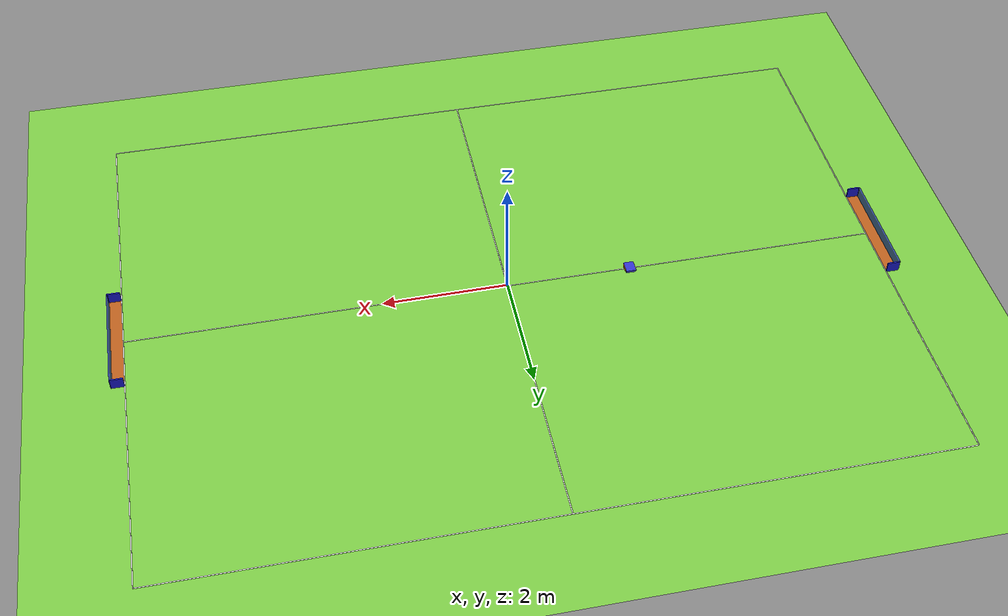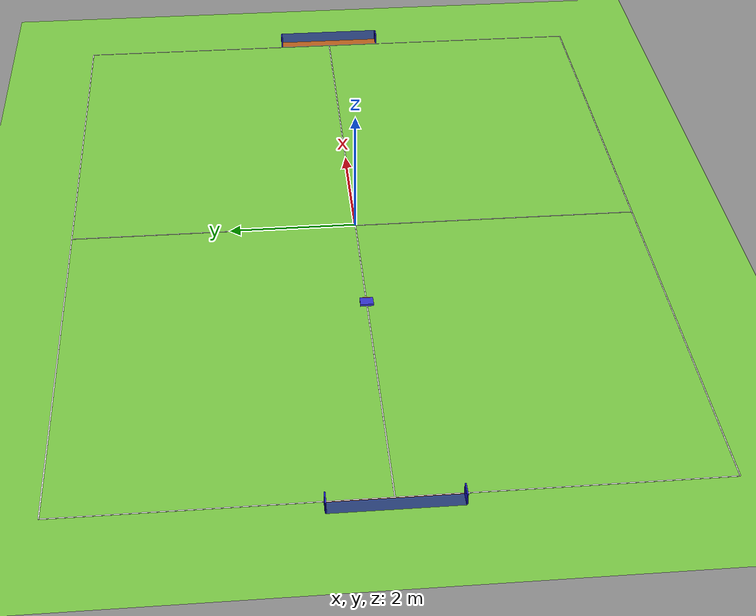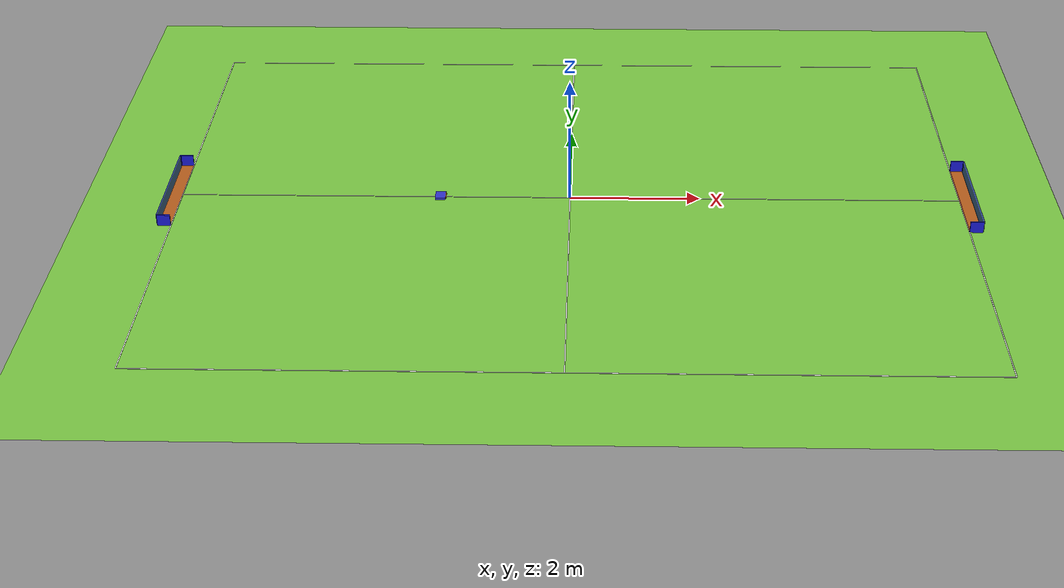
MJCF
<mujoco model="robot_soccer_v2"> <option gravity="0 0 -9.81"
          timestep="0.002"
          solver="Newton"          iterations="5"           ls_iterations="10"       jacobian="dense">        <flag eulerdamp="disable"/>      </option>
  <default>
    <geom contype="0" conaffinity="0" group="1"/>
    <default class="visual">
       <geom contype="0" conaffinity="0" group="0"/> </default>
    <default class="collision">
        <geom contype="1" conaffinity="1" group="1" friction="0.7 0.1 0.1" solref="0.02 1" solimp="0.9 0.95 0.001"/> </default>
  </default>

  <asset>
    </asset>

  <visual>
    <global offwidth="1280" offheight="720"/>
    <map znear="0.01"/>
  </visual>

  <worldbody>
    <camera name="top" pos="0 0 15" zaxis="0 0 1"/>

    <geom name="field" type="plane" size="7.5 6 0.5" pos="0 0 0" class="collision" rgba="0.48 0.78 0.27 1"/>

    <body name="left_goal" pos="-6 0 0">
        <site name="left_goal_line" pos="-0.1 0 0.001" size="0.1 0.9 0.001" rgba="1 0 0 0.5" type="box" class="visual"/>
        <geom name="left_goal_side_top" type="box" size="0.1 0.01 0.09" pos="-0.1 0.9 0.09" class="collision" rgba="0.1 0.1 0.8 1"/>
        <geom name="left_goal_side_bottom" type="box" size="0.1 0.01 0.09" pos="-0.1 -0.9 0.09" class="collision" rgba="0.1 0.1 0.8 1"/>
        <geom name="left_goal_backside" type="box" pos="-0.2 0 0.09" size="0.01 0.9 0.09" class="collision" rgba="0.1 0.1 0.8 0.7"/>
    </body>
    <body name="right_goal" pos="6 0 0">
        <site name="right_goal_line" pos="0.1 0 0.001" size="0.1 0.9 0.001" rgba="1 0 0 0.5" type="box" class="visual"/>
        <geom name="right_goal_side_top" type="box" size="0.1 0.01 0.09" pos="0.1 0.9 0.09" class="collision" rgba="0.1 0.1 0.8 1"/>
        <geom name="right_goal_side_bottom" type="box" size="0.1 0.01 0.09" pos="0.1 -0.9 0.09" class="collision" rgba="0.1 0.1 0.8 1"/>
        <geom name="right_goal_backside" type="box" pos="0.2 0 0.09" size="0.01 0.9 0.09" class="collision" rgba="0.1 0.1 0.8 0.7"/>
    </body>

    <site name="field_line_north" pos="0 4.5 0.001" size="6 0.008 0.001" rgba="1 1 1 1" type="box" class="visual"/>
    <site name="field_line_south" pos="0 -4.5 0.001" size="6 0.008 0.001" rgba="1 1 1 1" type="box" class="visual"/>
    <site name="field_line_east" pos="6 0 0.001" size="0.008 4.5 0.001" rgba="1 1 1 1" type="box" class="visual"/>
    <site name="field_line_west" pos="-6 0 0.001" size="0.008 4.5 0.001" rgba="1 1 1 1" type="box" class="visual"/>
    <site name="field_line_center_vert" pos="0 0 0.001" size="0.008 4.5 0.001" rgba="1 1 1 1" type="box" class="visual"/> <site name="field_line_center_hor" pos="0 0 0.001" size="6 0.008 0.001" rgba="1 1 1 1" type="box" class="visual"/> <body name="robot_planar_0" pos="-2 0 0"> <joint name="x_slide_0" type="slide" axis="1 0 0" damping="1.0" armature="0.1" limited="false"/>
        <joint name="y_slide_0" type="slide" axis="0 1 0" damping="1.0" armature="0.1" limited="false"/>
        <joint name="z_rotate_0" type="hinge" axis="0 0 1" damping="0.5" armature="0.1" limited="false"/>

        <geom name="robot_base_collision_0" type="box" size="0.08 0.10 0.018" pos="0 0 0.018" class="collision" rgba="0.2 0.2 0.8 1" mass="4.9"/> <body name="kicker_body_0" pos="0.08 0 0.018"> <joint name="kicker_slide_0" type="slide" axis="1 0 0" limited="true" range="0 0.05" damping="5" stiffness="0" armature="0.01"/>

            <geom name="kicker_plate_0" type="box" size="0.005 0.0665 0.018" pos="0.005 0 0" class="collision" rgba="1 0.5 0 1" mass="0.1" friction="1.0 0.1 0.1"/>
        </body>
    </body>
    <body name="golf_ball" pos="0 0 0.0115">
        <joint name="ball_joint" type="free"/>
        <geom name="golf_ball_geom" type="sphere" size="0.0115" class="collision" rgba="1 0 0 1" mass="0.046" friction="0.4 0.1 0.1" solref="0.01 1" solimp="0.9 0.98 0.001"/>
    </body>

  </worldbody>

  <actuator>
    <velocity name="x_vel_0" joint="x_slide_0" kv="25" ctrlrange="-3 3"/>
    <velocity name="y_vel_0" joint="y_slide_0" kv="25" ctrlrange="-3 3"/>
    <velocity name="rot_vel_0" joint="z_rotate_0" kv="10" ctrlrange="-5 5"/>

    <position name="kicker_pos_0" joint="kicker_slide_0" kp="1000" kv="20" ctrlrange="0 0.05" ctrllimited="true"/>
  </actuator>

  <contact>
    <pair geom1="robot_base_collision_0" geom2="field"/>
    <pair geom1="kicker_plate_0"       geom2="field"/>
    <pair geom1="golf_ball_geom"         geom2="field"/>

    <pair geom1="kicker_plate_0"       geom2="golf_ball_geom"/>

    <pair geom1="golf_ball_geom" geom2="left_goal_side_top"/>
    <pair geom1="golf_ball_geom" geom2="left_goal_side_bottom"/>
    <pair geom1="golf_ball_geom" geom2="left_goal_backside"/>
    <pair geom1="golf_ball_geom" geom2="right_goal_side_top"/>
    <pair geom1="golf_ball_geom" geom2="right_goal_side_bottom"/>
    <pair geom1="golf_ball_geom" geom2="right_goal_backside"/>

    <pair geom1="robot_base_collision_0" geom2="left_goal_side_top"/>
    <pair geom1="robot_base_collision_0" geom2="left_goal_side_bottom"/>
    <pair geom1="robot_base_collision_0" geom2="left_goal_backside"/>
    <pair geom1="kicker_plate_0"       geom2="left_goal_side_top"/>
    <pair geom1="kicker_plate_0"       geom2="left_goal_side_bottom"/>
    <pair geom1="kicker_plate_0"       geom2="left_goal_backside"/>
    <pair geom1="robot_base_collision_0" geom2="right_goal_side_top"/>
    <pair geom1="robot_base_collision_0" geom2="right_goal_side_bottom"/>
    <pair geom1="robot_base_collision_0" geom2="right_goal_backside"/>
    <pair geom1="kicker_plate_0"       geom2="right_goal_side_top"/>
    <pair geom1="kicker_plate_0"       geom2="right_goal_side_bottom"/>
    <pair geom1="kicker_plate_0"       geom2="right_goal_backside"/>

    <exclude body1="robot_planar_0" body2="kicker_body_0"/>

  </contact>

</mujoco>
